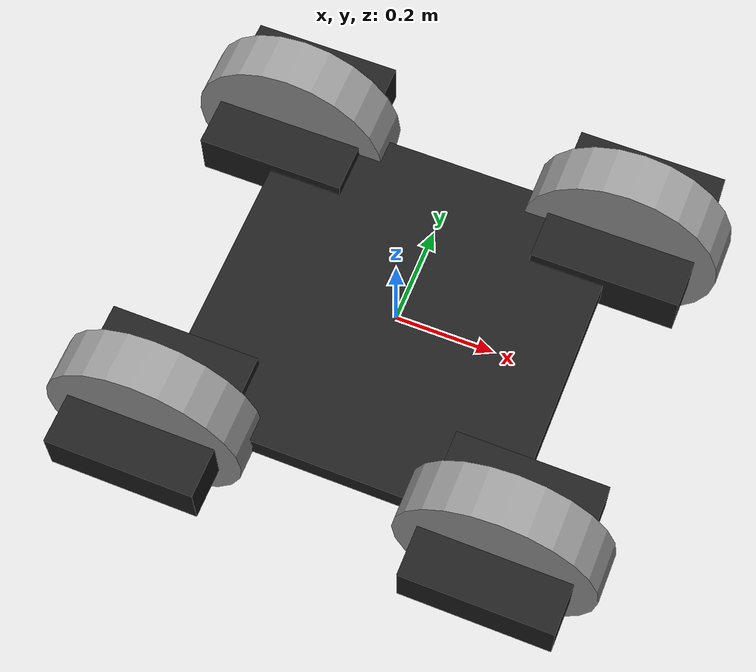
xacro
<?xml version="1.0" encoding="UTF-8"?>
<robot xmlns:xacro="http://wiki.ros.org/xacro" name="steering_chassis">

  <!-- Use this if parameters are set from the launch file, otherwise delete -->
  <xacro:arg name="prefix" default="" />

  <xacro:arg name="use_mock_hardware" default="false" />
  <xacro:arg name="mock_sensor_commands" default="false" />
  <xacro:arg name="sim_gazebo_classic" default="false" />
  <xacro:arg name="sim_gazebo" default="false" />
  <xacro:arg name="simulation_controllers" default="" />

  <xacro:include filename="$(find steering_chassis_description)/urdf/steering_chassis/steering_chassis_macro.xacro"/>
  <xacro:include filename="$(find steering_chassis_description)/urdf/steering_chassis/steering_chassis_macro.ros2_control.xacro"/>

  <!-- create link fixed to the "world" -->
  <link name="world" />

  <!-- Load robot's macro with parameters -->
  <!-- set prefix if multiple robots are used -->
  <xacro:steering_chassis prefix="$(arg prefix)" parent="world" >
    <origin xyz="0 0 0" rpy="0 0 0" />          <!-- position robot in the world -->
  </xacro:steering_chassis>

  <xacro:steering_chassis_ros2_control
    name="steering_chassis"
    prefix="$(arg prefix)"
    use_mock_hardware="$(arg use_mock_hardware)"
    mock_sensor_commands="$(arg mock_sensor_commands)"
    sim_gazebo_classic="$(arg sim_gazebo_classic)"
    sim_gazebo="$(arg sim_gazebo)"
    simulation_controllers="$(arg simulation_controllers)" />

</robot>

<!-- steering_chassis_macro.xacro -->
<robot xmlns:xacro="http://wiki.ros.org/xacro">
  <xacro:include filename="$(find steering_chassis_description)/urdf/steering_chassis/steering_wheel_macro.xacro" />
  <xacro:macro name="steering_chassis" params="prefix parent *origin">
    <xacro:property name="AX" value="0.7" />
    <xacro:property name="AY" value="0.7" />

    <link name="${prefix}base_link">
      <!-- Default inertial for Gazebo - copy and edit block from 'common.xacro'
           to get more realistic behavior -->
      <xacro:default_inertial/>
      <visual>
        <origin xyz="0 0 0" rpy="0 0 0" />
        <geometry>
          <box size="${AX} ${AY} 0.05"/>
        </geometry>
        <material name="black"/>
      </visual>
      <collision>
        <origin xyz="0 0 0" rpy="0 0 0" />
        <geometry>
          <box size="${AX} ${AY} 0.1"/>
        </geometry>
      </collision>
    </link>
    <xacro:steering_wheel prefix="${prefix}" index="1" parent="${prefix}base_link">
      <origin xyz="${AX/2} ${AY/2} 0" rpy="0 0 0" />
      <!-- position robot in the world -->
    </xacro:steering_wheel>
    <xacro:steering_wheel prefix="${prefix}" index="3" parent="${prefix}base_link">
      <origin xyz="${-1*AX/2} ${AY/2} 0" rpy="0 0 0" />
      <!-- position robot in the world -->
    </xacro:steering_wheel>
    <xacro:steering_wheel prefix="${prefix}" index="4" parent="${prefix}base_link">
      <origin xyz="${-1*AX/2} ${-1*AY/2} 0" rpy="0 0 0" />
      <!-- position robot in the world -->
    </xacro:steering_wheel>

    <xacro:steering_wheel prefix="${prefix}" index="2" parent="${prefix}base_link">
      <origin xyz="${AX/2} ${-1*AY/2} 0" rpy="0 0 0" />
      <!-- position robot in the world -->
    </xacro:steering_wheel>
    <joint name="${prefix}base_joint" type="fixed">
      <xacro:insert_block name="origin" />
      <parent link="${parent}" />
      <child link="${prefix}base_link" />
    </joint>
  </xacro:macro>
</robot>

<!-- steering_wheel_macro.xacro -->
<robot xmlns:xacro="http://wiki.ros.org/xacro">
  <xacro:include filename="$(find steering_chassis_description)/urdf/common/inertials.xacro" />
  <xacro:include filename="$(find steering_chassis_description)/urdf/common/materials.xacro" />

  <xacro:property name="R" value="0.2" />
  <xacro:property name="A" value="0.3" />

  <xacro:macro name="steering_wheel" params= "prefix index parent  *origin">
    <link name="${prefix}wheel${index}_base_link">
      <visual>
        <origin xyz="0 0 0" rpy="0 0 0"/>
        <geometry>
          <box size="${A} ${A} 0.1"/>
        </geometry>
        <material name="black"/>
      </visual>
      <collision>
        <origin xyz="0 0 0" rpy="0 0 0"/>
        <geometry>
          <box size="${A} ${A} 0.1"/>
        </geometry>
      </collision>
      <inertial>
        <origin xyz="0 0 0" rpy="0 0 0"/>
        <mass value="0.1"/>
        <inertia ixx="0.0001" ixy="0.0" ixz="0.0" iyy="0.0001" iyz="0.0" izz="0.0001"/>
      </inertial>
    </link>
    <link name="${prefix}wheel${index}_link1">
      <!-- Default inertial for Gazebo - copy and edit block from 'common.xacro'
           to get more realistic behavior-->
      <xacro:default_inertial/>
      <visual>
        <origin xyz="0 0 0" rpy="0 0 0" />
        <geometry>
          <cylinder length="0.05" radius="0.15" />
        </geometry>
        <material name="grey"/>
      </visual>
      <collision>
        <origin xyz="0 0 0" rpy="0 0 0" />
        <geometry>
          <cylinder length="0.05" radius="0.15" />
        </geometry>
      </collision>
    </link>
    <link name="${prefix}wheel${index}_link2">
      <!-- Default inertial for Gazebo - copy and edit block from 'common.xacro'
           to get more realistic behavior-->
      <xacro:default_inertial/>
      <visual>
        <origin xyz="0 0 0" rpy="${pi/2} 0 0" />
        <geometry>
          <cylinder length="0.1" radius="${R}" />
        </geometry>
        <material name="grey"/>
      </visual>
      <collision>
        <origin xyz="0 0 0" rpy="${pi/2} 0 0" />
        <geometry>
          <cylinder length="0.1" radius="${R}" />
        </geometry>
      </collision>
    </link>
    <!-- JOINTS -->
    <!-- base_joint fixes base_link to the environment -->
    <joint name="${prefix}wheel${index}_base_joint" type="fixed">
      <xacro:insert_block name="origin" />
      <parent link="${parent}" />
      <child link="${prefix}wheel${index}_base_link" />
    </joint>
    <!-- joint 1 -->
    <joint name="${prefix}wheel${index}_joint1" type="continuous">
      <origin xyz="0 0 0" rpy="0 0 0" />
      <parent link="${prefix}wheel${index}_base_link" />
      <child link="${prefix}wheel${index}_link1" />
      <axis xyz="0 0 1" />
    </joint>
    <joint name="${prefix}wheel${index}_joint2" type="continuous">
      <origin xyz="0 0 0" rpy="0 0 0" />
      <parent link="${prefix}wheel${index}_link1" />
      <child link="${prefix}wheel${index}_link2" />
      <axis xyz="0 1 0" />
    </joint>
  </xacro:macro>

</robot>
